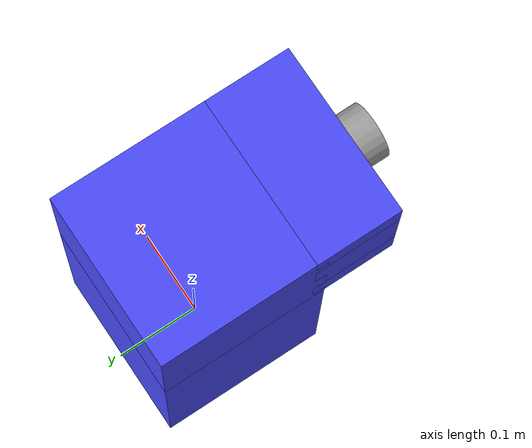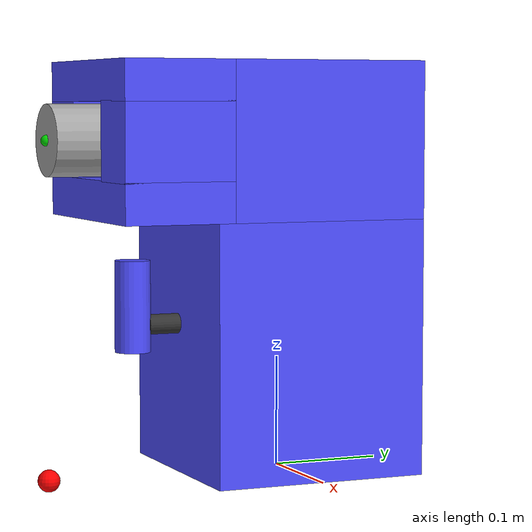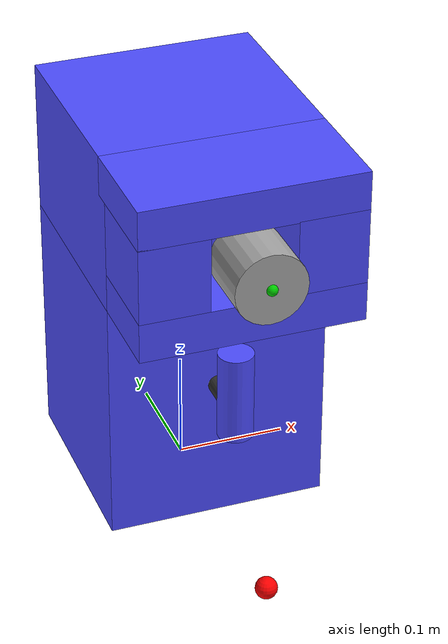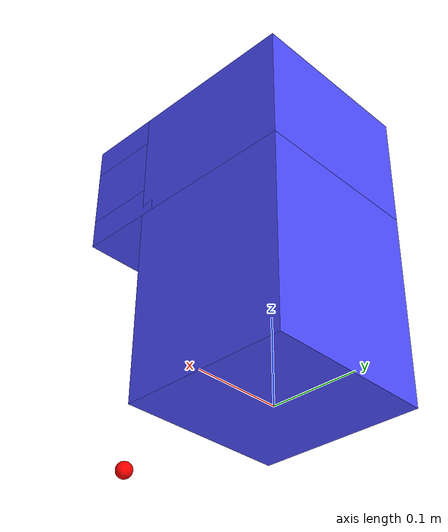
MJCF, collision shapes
<mujoco model="coffeemachine">
   <compiler angle="radian" inertiafromgeom="auto" inertiagrouprange="4 5"/>
    <asset>
      <material name="cm_col" rgba="0.3 0.3 1.0 0.5" shininess="0" specular="0"/>
      <material name="cmred" rgba="0.38 0.19 0.2 1" shininess="1" reflectance=".7" specular=".5"/>
      <material name="cmwhite" rgba=".85 .85 .85 1" shininess="1" reflectance=".7" specular=".5"/>
      <material name="cmgrey" rgba=".65 .65 .65 1" shininess="1" reflectance="1" specular=".5"/>
      <material name="cmblack" rgba=".2 .2 .2 1" shininess="1" reflectance=".7" specular=".5"/>
    </asset>
    <default>
      <default class="cm_base">
          <joint armature="0.001" damping="2" limited="true"/>
          <geom conaffinity="0" contype="0" group="1" type="mesh"/>
          <position ctrllimited="true" ctrlrange="0 1.57"/>
          <default class="cm_viz">
              <geom condim="4" type="mesh"/>
          </default>
          <default class="cm_col">
              <geom conaffinity="1" condim="3" contype="1" group="4" material="cm_col" solimp="0.99 0.99 0.01" solref="0.01 1"/>
          </default>
      </default>
    </default>
    <asset>
        <mesh file="../objects/meshes/coffeemachine/body1.stl" name="body1"/>
        <mesh file="../objects/meshes/coffeemachine/body2.stl" name="body2"/>
        <mesh file="../objects/meshes/coffeemachine/button.stl" name="button"/>
        <mesh file="../objects/meshes/coffeemachine/mug.stl" name="mug"/>
        <mesh file="../objects/meshes/coffeemachine/handle.stl" name="handle"/>
        <mesh file="../objects/meshes/coffeemachine/spout.stl" name="spout"/>
        <mesh file="../objects/meshes/coffeemachine/spoutconnect.stl" name="spoutconnect"/>
        <mesh file="../objects/meshes/coffeemachine/buttonring.stl" name="buttonring"/>
        <mesh file="../objects/meshes/coffeemachine/bodypiece1.stl" name="bodypiece1"/>
    </asset>
    <worldbody>
       <body childclass="cm_base" name="coffeemachine">
        <body name="cm_link">
            <geom material="cmred" mesh="body1" pos="0 0 0.115"/>
            <geom material="cmred" mesh="body2" pos="0 -0.042 0.3"/>
            <geom material="cmblack" mesh="spout" pos="0 -0.141 0.155"/>
            <geom material="cmblack" euler="1.57 0 0" pos="0 -0.109 0.135" size="0.009 0.018" type="cylinder"/>
            <geom material="cmblack" euler="1.571 -0.0 0.0" mesh="buttonring" pos="0.0 -0.183 0.3"/>
            <geom material="cmblack" mesh="bodypiece1" pos="0.0 0.0 0.115" />

            <geom class="cm_col" pos="0.069 -0.133 0.3" size="0.031 0.05 0.035" type="box" />
            <geom class="cm_col" pos="-0.069 -0.133 0.3" size="0.031 0.05 0.035" type="box" />
            <geom class="cm_col" pos="0.0 -0.133 0.352" size="0.1 0.05 0.018" type="box" />
            <geom class="cm_col" pos="0.0 -0.133 0.248" size="0.1 0.05 0.018" type="box" />
            <geom class="cm_col" pos="0 0 0.115" size="0.1 0.098 0.115" type="box"/>
            <geom class="cm_col" euler="1.57 0 0" pos="0 -0.109 0.135" size="0.009 0.018" type="cylinder"/>
            <geom class="cm_col" pos="0.0 -0.141 0.152" size="0.016 0.041" type="cylinder"/>
            <geom class="cm_col" pos="0 0 0.3" size="0.1 0.098 0.07" type="box"/>
            <site name="coffee_goal" pos="0 -.22 0" size="0.01" rgba="1 0 0 1"/>

        </body>

        <body name="cmbutton" pos="0 0 0">
          <geom material="cmgrey" euler="1.57 0 0" pos="0 -0.19 0.3" size="0.032 0.03 0.032" type="cylinder" group="1"/>
          <geom class="cm_col" euler="1.57 0 0" pos="0 -0.19 0.3" size="0.032 0.03 0.032" type="cylinder" mass=".1"/>

          <joint type="slide" range="0 0.03" axis="0 1 0" name="goal_slidey" pos="0 0 0" damping="1.0"/>
          <site name="buttonStart" pos="0.0 -0.22 0.3" size="0.005" rgba="0 0.8 0 1"/>
        </body>
    </body>
    </worldbody>
</mujoco>
